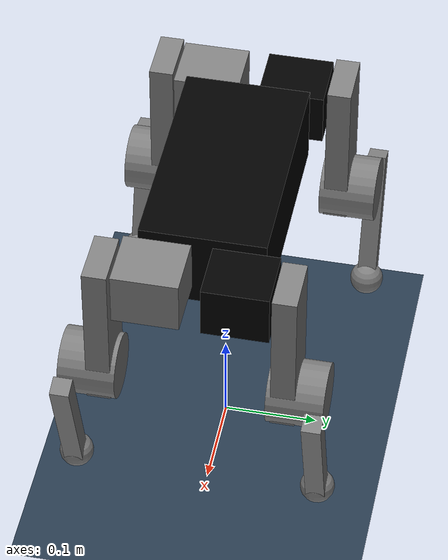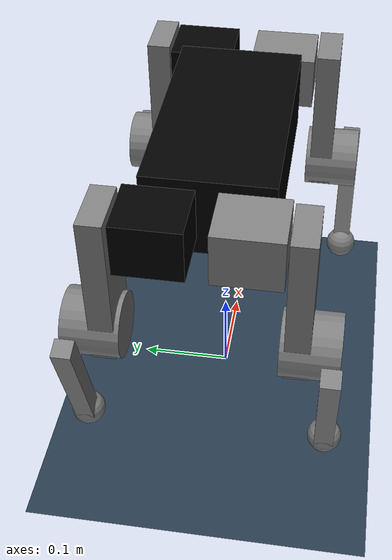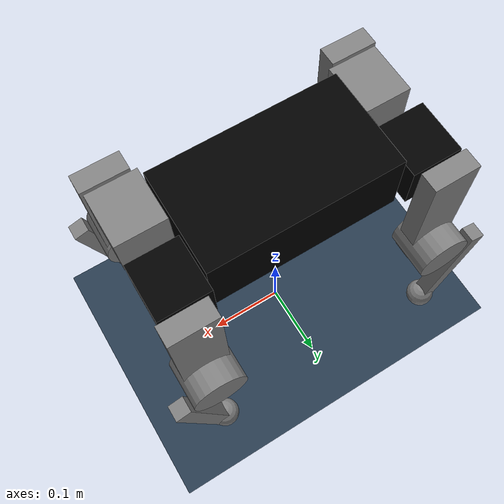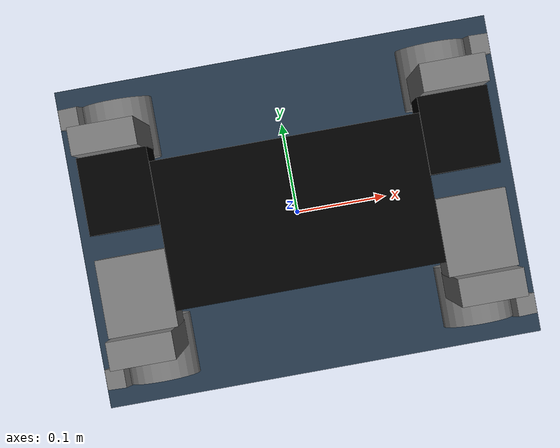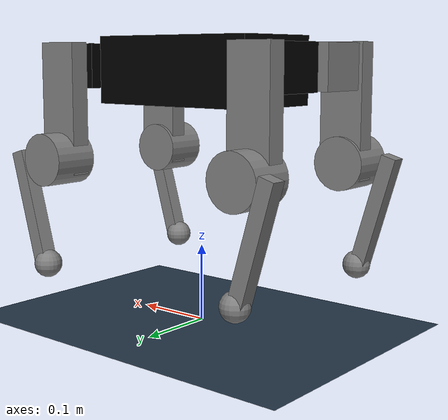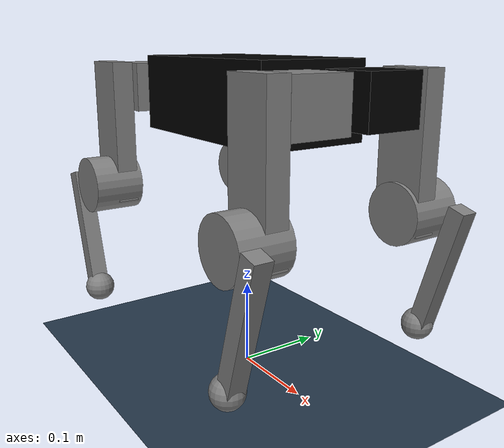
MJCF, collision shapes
<mujoco model="legged_tinymal_description">
  <compiler angle="radian" meshdir="../meshes/visual/" autolimits="true"/>
<!-- 修改至go2.xml -->

  <option cone="elliptic" impratio="100" />

 <default>
    <default class="tinymal">
      <geom friction="0.2" margin="0.001" condim="1"/>
      <joint axis="0 1 0" damping="0.1" armature="0.01" frictionloss="0.2"/>
      <motor ctrlrange="-10.5 10.5"/>
      <default class="HAA">
        <joint axis="1 0 0" range="-1.0472 1.0472"/>
      </default>
      <default class="HFE">
          <joint range="-3.14 3.14"/>
      </default>
      <default class="KFE">
        <joint range="-3.14 3.14"/>
        <motor ctrlrange="-10.5 10.5"/>
      </default>
      <default class="visual">
        <geom type="mesh" contype="0" conaffinity="0" group="2"/>
      </default>
      <default class="collision">
        <geom group="3"/>
        <default class="FOOT">
          <geom size="0.018" priority="1" condim="6"
            friction="0.4 0.02 0.01"/>
        </default>
      </default>
    </default>
  </default>

  <asset>
    <material name="metal" rgba=".9 .95 .95 1" />
    <material name="black" rgba="0 0 0 1" />
    <material name="white" rgba="1 1 1 1" />
    <material name="gray" rgba="0.671705 0.692426 0.774270 1" />
    <material name="transparent" rgba="1 1 1 0.01" />

    <mesh name="trunk" file="trunk.STL"/>
    <mesh name="LF_hip" file="LF_hip.STL"/>
    <mesh name="LF_thigh" file="LF_thigh.STL"/>
    <mesh name="LF_calf" file="LF_calf.STL"/>
    <mesh name="LF_FOOT" file="LF_FOOT.STL"/>
    <mesh name="LH_hip" file="LH_hip.STL"/>
    <mesh name="LH_thigh" file="LH_thigh.STL"/>
    <mesh name="LH_calf" file="LH_calf.STL"/>
    <mesh name="LH_FOOT" file="LH_FOOT.STL"/>
    <mesh name="RF_hip" file="RF_hip.STL"/>
    <mesh name="RF_thigh" file="RF_thigh.STL"/>
    <mesh name="RF_calf" file="RF_calf.STL"/>
    <mesh name="RF_FOOT" file="RF_FOOT.STL"/>
    <mesh name="RH_hip" file="RH_hip.STL"/>
    <mesh name="RH_thigh" file="RH_thigh.STL"/>
    <mesh name="RH_calf" file="RH_calf.STL"/>
    <mesh name="RH_FOOT" file="RH_FOOT.STL"/>

    <texture type="skybox" builtin="gradient" rgb1="0.3 0.5 0.7" rgb2="0 0 0" width="512" height="512" />
    <texture name="texplane" type="2d" builtin="checker" rgb1=".2 .3 .4" rgb2=".1 0.15 0.2" width="512" height="512" mark="cross" markrgb=".8 .8 .8" />
    <material name="matplane" reflectance="0.3" texture="texplane" texrepeat="1 1" texuniform="true" />

  </asset>

  <worldbody>

    <light directional="true" diffuse=".4 .4 .4" specular="0.1 0.1 0.1" pos="0 0 5.0" dir="0 0 -1" castshadow="false" />
    <light directional="true" diffuse=".6 .6 .6" specular="0.2 0.2 0.2" pos="0 0 4" dir="0 0 -1" />
    <geom name="floor" pos="0 0 0" size="15 15 1" type="plane" material="matplane" margin="0.001" condim="3" friction="1 0.005 0.0001" />
 <!-- this pos is heigt in initial -->
 <body name="base" pos="0.0 0.0 0.3" childclass="tinymal">
    <inertial pos="-0.00077 4e-05 0.0214" quat="0 0.705291 0 0.708917" mass="2.2445" diaginertia="0.0182904 0.01611 0.00463964"/>
    <freejoint />
    <geom mesh="trunk"  material="gray" class="visual"/>
    <geom size="0.1175 0.065 0.04325" pos="0 0 0.026" type="box" material="black" class="collision"/>
    <site name="imu" pos="0.0 0.0 0.0" />
    <body name="LF_hip" pos="0.1155 0.045 0.03125">
      <inertial pos="0.03613 0.00556 -6e-05" quat="0.617602 0.344336 -0.617602 0.344336" mass="0.3988" diaginertia="0.00021 0.00020618 0.00018382"/>
      <joint name="LF_HAA" class="HAA"/>
      <geom mesh="LF_hip" material="gray" class="visual"/>
      <geom size="0.03075 0.03425 0.0286" pos="0.034 0 0" type="box" material="black" class="collision"/>
      <body name="LF_thigh" pos="0.039 0 0">
        <inertial pos="-7e-05 0.05966 -0.10269" quat="0.70605 0.0386363 -0.0386363 0.70605" mass="0.39342" diaginertia="0.000777684 0.00075 0.000132316"/>
        <joint name="LF_HFE" class="HFE"/>
        <geom mesh="LF_thigh" material="gray" class="visual" />
        <geom size="0.029 0.0125 0.085" pos="0 0.04933 -0.055" type="box" class="collision"/>
        <body name="LF_calf" pos="0 0.0615 -0.12">
          <inertial pos="0.017651 0.025067 -0.033532" quat="0.75241 0.0348708 0.0720874 0.65381" mass="0.055514" diaginertia="0.000170727 0.000147049 3.00239e-05"/>
          <joint name="LF_KFE" class="KFE"/>
          <geom mesh="LF_calf" material="gray" class="visual"/>
          <geom name="box_collision" size="0.01 0.01 0.0755" pos="0.0265 0.0215 -0.0645" quat="0.989827 0 0.142273 0" type="box" class="collision" />
          <geom name="cylinder_collision" size="0.034 0.0295" quat="0.707107 0.707107 0 0" type="cylinder" class="collision"/>
          <geom mesh="LF_FOOT" class = "visual"/>
          <site name="LF_touch" pos="0.0010679 0.0215 -0.13646" size="0.018" />
          <geom size="0.015" pos="0.0010679 0.0215 -0.13646" quat="0.988683 0 0.150021 0" class="collision"/>
        </body>
      </body>
    </body>
    <body name="LH_hip" pos="-0.1155 0.045 0.03125">
      <inertial pos="-0.03607 0.00556 0" quat="0.344336 0.617602 -0.344336 0.617602" mass="0.3988" diaginertia="0.00021 0.00020618 0.00018382"/>
      <joint name="LH_HAA" class="HAA"/>
      <geom  mesh="LH_hip" material="gray" class="visual"/>
      <geom size="0.03075 0.03425 0.0286" pos="-0.034 0 0" type="box" material="black" class="collision"/>
      <body name="LH_thigh" pos="-0.039 0 0">
        <inertial pos="-7e-05 0.05966 -0.10269" quat="0.70605 0.0386363 -0.0386363 0.70605" mass="0.39342" diaginertia="0.000777684 0.00075 0.000132316"/>
        <joint name="LH_HFE" class="HFE"/>
        <geom  mesh="LH_thigh" material="gray" class="visual"/>
        <geom size="0.029 0.0125 0.085" pos="0 0.04933 -0.055" type="box" class="collision"/>
        <body name="LH_calf" pos="0 0.0615 -0.12">
          <inertial pos="-0.017651 0.025067 -0.033532" quat="0.655321 -0.0720649 -0.0349849 0.751091" mass="0.055514" diaginertia="0.000170701 0.000147076 3.00226e-05"/>
          <joint name="LH_KFE" class="KFE"/>
          <geom  mesh="LH_calf" material="gray" class="visual"/>
          <geom size="0.01 0.01 0.0755" pos="-0.0265 0.0215 -0.0645" quat="0.989827 0 -0.142273 0" type="box" class="collision"/>
          <geom size="0.034 0.0295" quat="0.707107 0.707107 0 0" type="cylinder" class="collision"/>
          <geom mesh="LH_FOOT" class="visual"/>
          <site name="LH_touch" pos="-0.0010679 0.0215 -0.13646" size="0.018" />
          <geom size="0.015" pos="-0.0010679 0.0215 -0.13646" quat="0.988683 0 -0.150021 0" class="collision"/>
        </body>
      </body>
    </body>
    <body name="RF_hip" pos="0.1155 -0.045 0.03125">
      <inertial pos="0.03613 -0.00556 6e-05" quat="0.344336 0.617602 -0.344336 0.617602" mass="0.3988" diaginertia="0.00021 0.00020618 0.00018382"/>
      <joint name="RF_HAA" class="HAA"/>
      <geom  mesh="RF_hip" material="gray" class="visual"/>
      <geom size="0.03075 0.03425 0.0286" pos="0.034 0 0" type="box" class="collision"/>
      <body name="RF_thigh" pos="0.039 0 0">
        <inertial pos="7e-05 -0.05966 -0.10269" quat="0.70605 -0.0386363 0.0386363 0.70605" mass="0.39342" diaginertia="0.000777684 0.00075 0.000132316"/>
        <joint name="RF_HFE" class="HFE"/>
        <geom  mesh="RF_thigh" material="gray" class="visual"/>
        <geom size="0.029 0.0125 0.085" pos="0 -0.04933 -0.055" type="box" class="collision"/>
        <body name="RF_calf" pos="0 -0.0615 -0.12">
          <inertial pos="0.017651 -0.025067 -0.033532" quat="0.655321 0.0720649 0.0349849 0.751091" mass="0.055514" diaginertia="0.000170701 0.000147076 3.00226e-05"/>
          <joint name="RF_KFE" class="KFE"/>
          <geom  mesh="RF_calf" material="gray" class="visual"/>
          <geom size="0.01 0.01 0.0755" pos="0.0265 -0.0215 -0.0645" quat="0.989827 0 0.142273 0" type="box" class="collision"/>
          <geom size="0.034 0.0295" quat="0.707107 0.707107 0 0" type="cylinder" class="collision"/>
          <geom mesh="RF_FOOT" class="visual"/>
          <site name="RF_touch" pos="0.0010679 -0.0215 -0.13646" size="0.018" />
          <geom size="0.015" pos="0.00106793 -0.0215 -0.136459" quat="0.988683 0 0.150021 0" class="collision"/>
        </body>
      </body>
    </body>
    <body name="RH_hip" pos="-0.1155 -0.045 0.03125">
      <inertial pos="-0.0362 -0.00556 0" quat="0.617602 0.344336 -0.617602 0.344336" mass="0.3988" diaginertia="0.00021 0.00020618 0.00018382"/>
      <joint name="RH_HAA" class="HAA"/>
      <geom mesh="RH_hip" material="gray" class="visual"/>
      <geom size="0.03075 0.03425 0.0286" pos="-0.034 0 0" type="box" class="collision"/>
      <body name="RH_thigh" pos="-0.039 0 0">
        <inertial pos="7e-05 -0.05966 -0.10269" quat="0.70605 -0.0386363 0.0386363 0.70605" mass="0.39342" diaginertia="0.000777684 0.00075 0.000132316"/>
        <joint name="RH_HFE" class="HFE"/>
        <geom  mesh="RH_thigh" material="gray" class="visual"/>
        <geom size="0.029 0.0125 0.085" pos="0 -0.04933 -0.055" type="box" class="collision"/>
        <body name="RH_calf" pos="0 -0.0615 -0.12">
          <inertial pos="-0.017651 -0.025067 -0.033532" quat="0.751091 -0.0349849 -0.0720649 0.655321" mass="0.055514" diaginertia="0.000170701 0.000147076 3.00226e-05"/>
          <joint name="RH_KFE" class="KFE"/>
          <geom  mesh="RH_calf" material="gray" class="visual"/>
          <geom size="0.01 0.01 0.0755" pos="-0.0265 -0.0215 -0.0645" quat="0.989827 0 -0.142273 0" type="box" class="collision"/>
          <geom size="0.034 0.0295" quat="0.707107 0.707107 0 0" type="cylinder" class="collision"/>
          <geom mesh="RH_FOOT" class="visual"/>
          <site name="RH_touch" pos="-0.0010679 -0.0215 -0.13646" size="0.018" />
          <geom size="0.015" pos="-0.00106793 -0.0215 -0.136459" quat="0.988683 0 -0.150021 0" class="collision"/>
        </body>
      </body>
    </body>
   </body>
  </worldbody>

<actuator>
    <motor class="HAA"   name = "LF_hip" joint = "LF_HAA" />
    <motor class="HFE"  name = "LF_thigh" joint = "LF_HFE" />
    <motor class="KFE"  name = "LF_calf" joint = "LF_KFE" />
    <motor class="HAA"  name = "LH_hip" joint = "LH_HAA" />
    <motor class="HFE"  name = "LH_thigh" joint = "LH_HFE" />
    <motor class="KFE"  name = "LH_calf" joint = "LH_KFE" />
    <motor class="HAA"  name = "RF_hip" joint = "RF_HAA" />
    <motor class="HFE"  name = "RF_thigh" joint = "RF_HFE" />
    <motor class="KFE"  name = "RF_calf" joint = "RF_KFE" />
    <motor class="HAA"  name = "RH_hip" joint = "RH_HAA" />
    <motor class="HFE"  name = "RH_thigh" joint = "RH_HFE" />
    <motor class="KFE"  name = "RH_calf" joint = "RH_KFE" />

  </actuator>

  <sensor>
    <jointpos name="LF_hip_pos" joint="LF_HAA" />
    <jointpos name="LF_thigh_pos" joint="LF_HFE" />
    <jointpos name="LF_calf_pos" joint="LF_KFE" />
    <jointpos name="LH_hip_pos" joint="LH_HAA" />
    <jointpos name="LH_thigh_pos" joint="LH_HFE" />
    <jointpos name="LH_calf_pos" joint="LH_KFE" />
    <jointpos name="RF_hip_pos" joint="RF_HAA" />
    <jointpos name="RF_thigh_pos" joint="RF_HFE" />
    <jointpos name="RF_calf_pos" joint="RF_KFE" />
    <jointpos name="RH_hip_pos" joint="RH_HAA" />
    <jointpos name="RH_thigh_pos" joint="RH_HFE" />
    <jointpos name="RH_calf_pos" joint="RH_KFE" />

    <jointvel name="LF_hip_vel" joint="LF_HAA" />
    <jointvel name="LF_thigh_vel" joint="LF_HFE" />
    <jointvel name="LF_calf_vel" joint="LF_KFE" />
    <jointvel name="LH_hip_vel" joint="LH_HAA" />
    <jointvel name="LH_thigh_vel" joint="LH_HFE" />
    <jointvel name="LH_calf_vel" joint="LH_KFE" />
    <jointvel name="RF_hip_vel" joint="RF_HAA" />
    <jointvel name="RF_thigh_vel" joint="RF_HFE" />
    <jointvel name="RF_calf_vel" joint="RF_KFE" />
    <jointvel name="RH_hip_vel" joint="RH_HAA" />
    <jointvel name="RH_thigh_vel" joint="RH_HFE" />
    <jointvel name="RH_calf_vel" joint="RH_KFE" />

    <jointactuatorfrc name="LF_hip_torque" joint="LF_HAA" noise="0.01" />
    <jointactuatorfrc name="LF_thigh_torque" joint="LF_HFE" noise="0.01" />
    <jointactuatorfrc name="LF_calf_torque" joint="LF_KFE" noise="0.01" />
    <jointactuatorfrc name="LH_hip_torque" joint="LH_HAA" noise="0.01" />
    <jointactuatorfrc name="LH_thigh_torque" joint="LH_HFE" noise="0.01" />
    <jointactuatorfrc name="LH_calf_torque" joint="LH_KFE" noise="0.01" />
    <jointactuatorfrc name="RF_hip_torque" joint="RF_HAA" noise="0.01" />
    <jointactuatorfrc name="RF_thigh_torque" joint="RF_HFE" noise="0.01" />
    <jointactuatorfrc name="RF_calf_torque" joint="RF_KFE" noise="0.01" />
    <jointactuatorfrc name="RH_hip_torque" joint="RH_HAA" noise="0.01" />
    <jointactuatorfrc name="RH_thigh_torque" joint="RH_HFE" noise="0.01" />
    <jointactuatorfrc name="RH_calf_torque" joint="RH_KFE" noise="0.01" />

  <framequat     name='imu_quat' objtype='site' noise='0.001' objname='imu'/>

  <gyro          name='imu_gyro'    site='imu' noise='0.005' cutoff='34.9'/>

  </sensor>

</mujoco>
